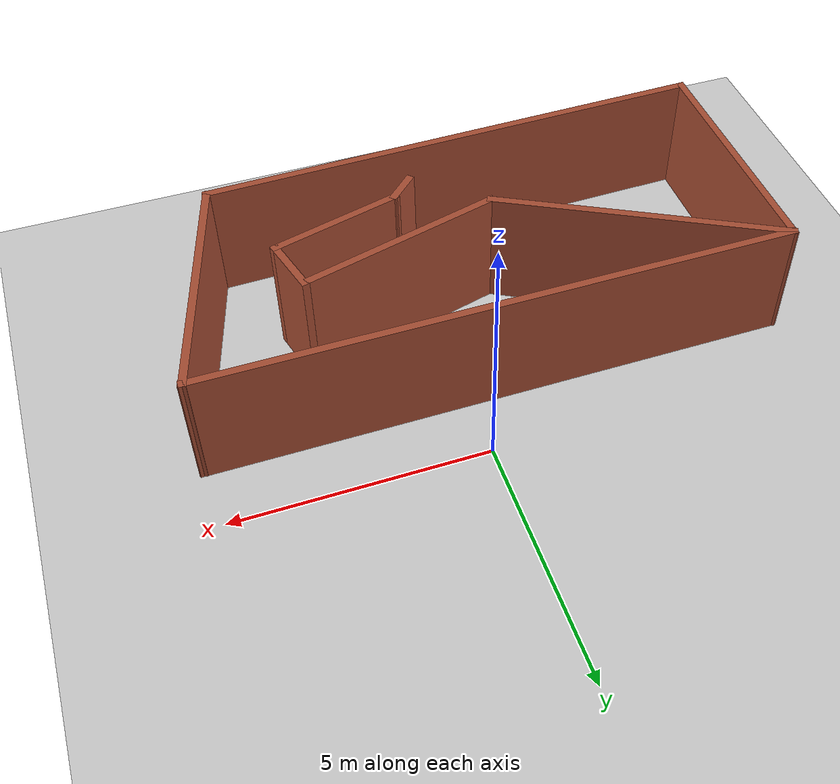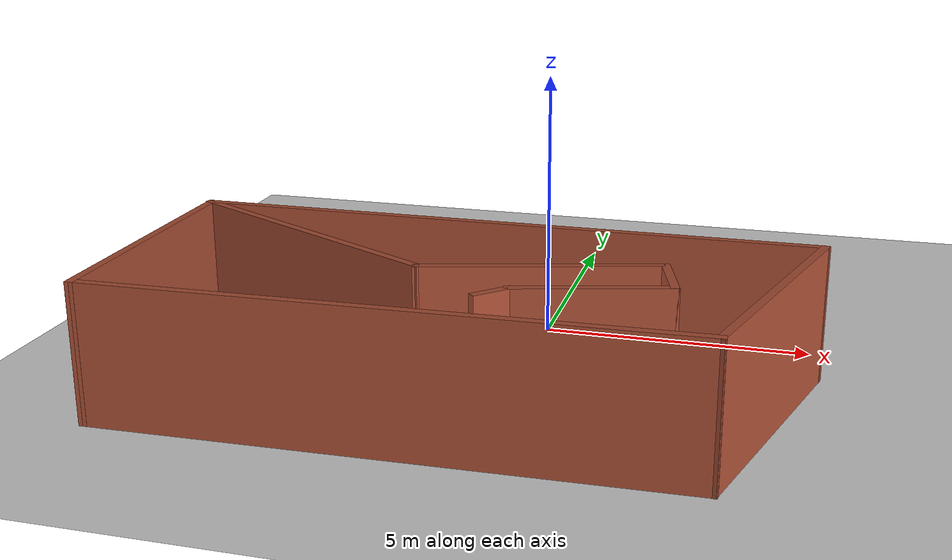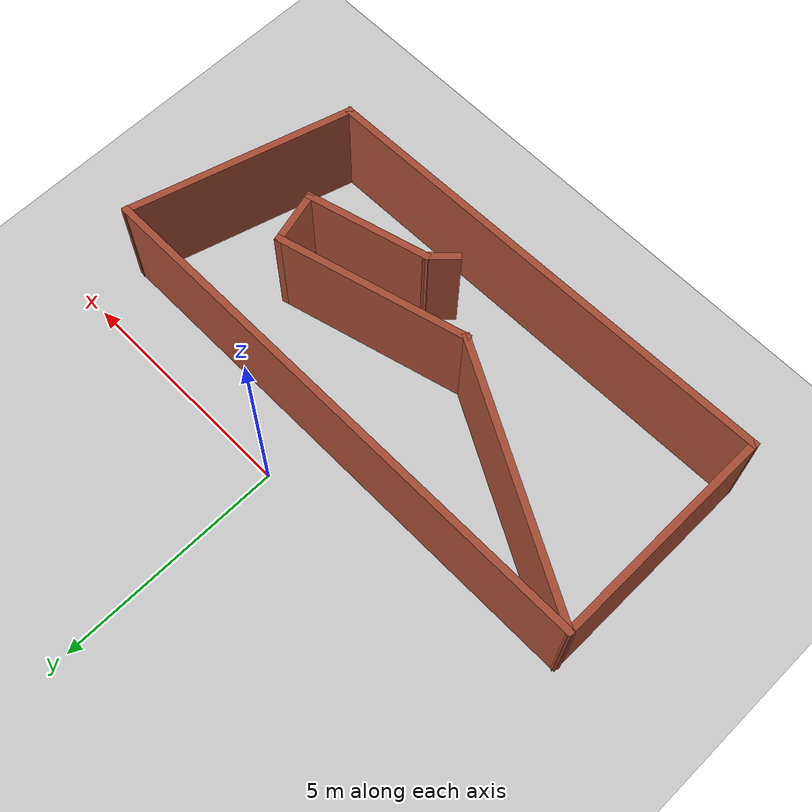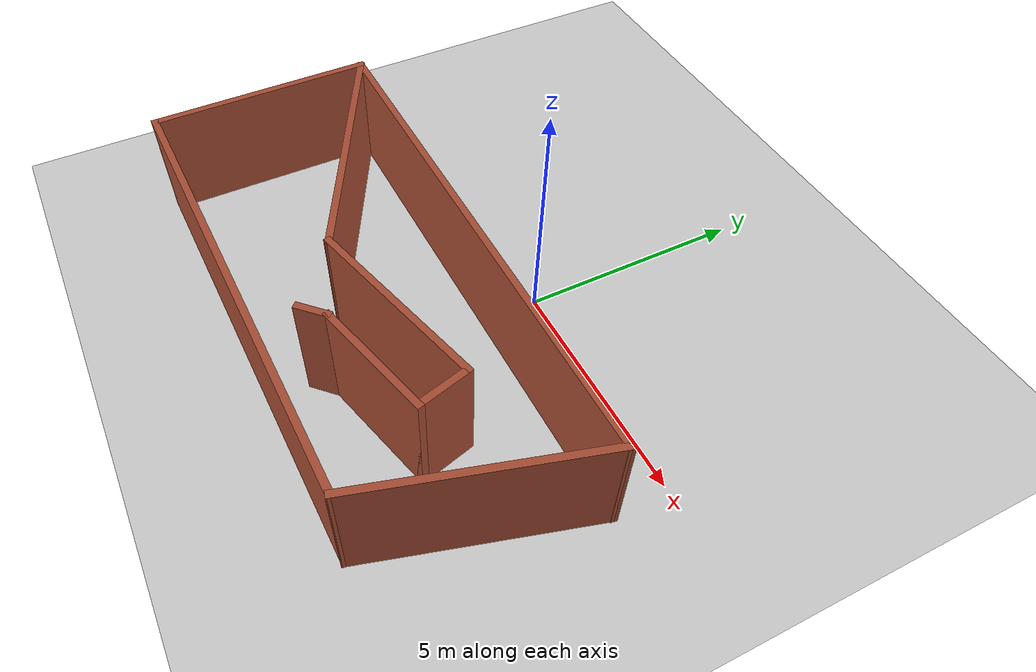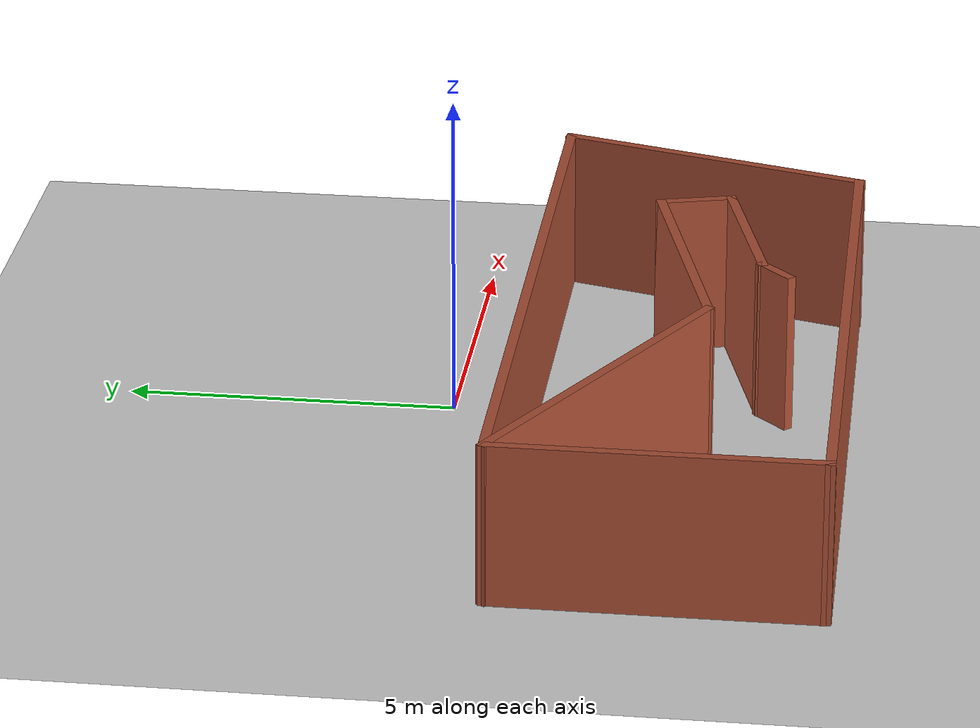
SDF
<sdf version="1.7">
 <world name="default">
  <light name="sun" type="directional">
   <pose>0 0 10 0 -0 0</pose>
   <diffuse>0.8 0.8 0.8 1</diffuse>
   <specular>0.2 0.2 0.2 1</specular>
   <attenuation>
    <range>1000</range>
    <constant>0.9</constant>
    <linear>0.01</linear>
    <quadratic>0.001</quadratic>
   </attenuation>
   <direction>-0.5 0.1 -0.9</direction>
   <spot><inner_angle>0</inner_angle><outer_angle>0</outer_angle><falloff>0</falloff></spot>
  </light>
  <model name="ground_plane">
   <static>1</static>
   <link name="link">
    <collision name="collision">
     <geometry><plane><normal>0 0 1</normal><size>100 100</size></plane></geometry>
     <surface><friction><ode><mu>100</mu><mu2>50</mu2></ode></friction></surface>
    </collision>
    <visual name="visual">
     <cast_shadows>0</cast_shadows>
     <geometry><plane><normal>0 0 1</normal><size>100 100</size></plane></geometry>
     <material>
      <script><uri>file://media/materials/scripts/gazebo.material</uri><name>Gazebo/Grey</name></script>
     </material>
    </visual>
   </link>
  </model>
  <gravity>0 0 -9.8</gravity>
  <magnetic_field>6e-06 2.3e-05 -4.2e-05</magnetic_field>
  <atmosphere type="adiabatic"/>
  <physics type="ode">
   <max_step_size>0.001</max_step_size>
   <real_time_factor>1</real_time_factor>
   <real_time_update_rate>1000</real_time_update_rate>
  </physics>
  <scene><ambient>0.4 0.4 0.4 1</ambient><background>0.7 0.7 0.7 1</background><shadows>1</shadows></scene>
  <audio><device>default</device></audio>
  <spherical_coordinates>
   <surface_model>EARTH_WGS84</surface_model>
   <latitude_deg>0</latitude_deg>
   <longitude_deg>0</longitude_deg>
   <elevation>0</elevation>
   <heading_deg>0</heading_deg>
  </spherical_coordinates>
  <model name="Untitled">
   <pose>-0.643488 -3.0933 0 0 -0 0</pose>
   <link name="Wall_0">
    <collision name="Wall_0_Collision">
     <geometry><box><size>5 0.15 2.5</size></box></geometry>
     <pose>0 0 1.25 0 -0 0</pose>
    </collision>
    <visual name="Wall_0_Visual">
     <pose>0 0 1.25 0 -0 0</pose>
     <geometry><box><size>5 0.15 2.5</size></box></geometry>
     <material>
      <script><uri>file://media/materials/scripts/gazebo.material</uri><name>Gazebo/Bricks</name></script>
      <ambient>1 1 1 1</ambient>
     </material>
     <meta><layer>0</layer></meta>
    </visual>
    <pose>-5.76651 -0.591701 0 0 -0 -1.5708</pose>
   </link>
   <link name="Wall_1">
    <collision name="Wall_1_Collision">
     <geometry><box><size>10.3624 0.15 2.5</size></box></geometry>
     <pose>0 0 1.25 0 -0 0</pose>
    </collision>
    <visual name="Wall_1_Visual">
     <pose>0 0 1.25 0 -0 0</pose>
     <geometry><box><size>10.3624 0.15 2.5</size></box></geometry>
     <material>
      <script><uri>file://media/materials/scripts/gazebo.material</uri><name>Gazebo/Bricks</name></script>
      <ambient>1 1 1 1</ambient>
     </material>
     <meta><layer>0</layer></meta>
    </visual>
    <pose>-0.661512 -2.9067 0 0 -0 0.021544</pose>
   </link>
   <link name="Wall_2">
    <collision name="Wall_2_Collision">
     <geometry><box><size>5 0.15 2.5</size></box></geometry>
     <pose>0 0 1.25 0 -0 0</pose>
    </collision>
    <visual name="Wall_2_Visual">
     <pose>0 0 1.25 0 -0 0</pose>
     <geometry><box><size>5 0.15 2.5</size></box></geometry>
     <material>
      <script><uri>file://media/materials/scripts/gazebo.material</uri><name>Gazebo/Bricks</name></script>
      <ambient>1 1 1 1</ambient>
     </material>
     <meta><layer>0</layer></meta>
    </visual>
    <pose>5.10939 -0.464921 0 0 -0 1.29262</pose>
   </link>
   <link name="Wall_3">
    <collision name="Wall_3_Collision">
     <geometry><box><size>11.6919 0.15 2.5</size></box></geometry>
     <pose>0 0 1.25 0 -0 0</pose>
    </collision>
    <visual name="Wall_3_Visual">
     <pose>0 0 1.25 0 -0 0</pose>
     <geometry><box><size>11.6919 0.15 2.5</size></box></geometry>
     <material>
      <script><uri>file://media/materials/scripts/gazebo.material</uri><name>Gazebo/Bricks</name></script>
      <ambient>1 1 1 1</ambient>
     </material>
     <meta><layer>0</layer></meta>
    </visual>
    <pose>0.004394 1.85008 0 0 -0 -3.13869</pose>
   </link>
   <link name="Wall_4">
    <collision name="Wall_4_Collision">
     <geometry><box><size>5.88785 0.15 2.5</size></box></geometry>
     <pose>0 0 1.25 0 -0 0</pose>
    </collision>
    <visual name="Wall_4_Visual">
     <pose>0 0 1.25 0 -0 0</pose>
     <geometry><box><size>5.88785 0.15 2.5</size></box></geometry>
     <material>
      <script><uri>file://media/materials/scripts/gazebo.material</uri><name>Gazebo/Bricks</name></script>
      <ambient>1 1 1 1</ambient>
     </material>
     <meta><layer>0</layer></meta>
    </visual>
    <pose>-3.2364 0.480799 0 0 -0 -0.490913</pose>
   </link>
   <link name="Wall_5">
    <collision name="Wall_5_Collision">
     <geometry><box><size>4.25 0.15 2.5</size></box></geometry>
     <pose>0 0 1.25 0 -0 0</pose>
    </collision>
    <visual name="Wall_5_Visual">
     <pose>0 0 1.25 0 -0 0</pose>
     <geometry><box><size>4.25 0.15 2.5</size></box></geometry>
     <material>
      <script><uri>file://media/materials/scripts/gazebo.material</uri><name>Gazebo/Bricks</name></script>
      <ambient>1 1 1 1</ambient>
     </material>
     <meta><layer>0</layer></meta>
    </visual>
    <pose>1.27386 -0.341122 0 0 -0 0.261799</pose>
   </link>
   <link name="Wall_6">
    <collision name="Wall_6_Collision">
     <geometry><box><size>1.25 0.15 2.5</size></box></geometry>
     <pose>0 0 1.25 0 -0 0</pose>
    </collision>
    <visual name="Wall_6_Visual">
     <pose>0 0 1.25 0 -0 0</pose>
     <geometry><box><size>1.25 0.15 2.5</size></box></geometry>
     <material>
      <script><uri>file://media/materials/scripts/gazebo.material</uri><name>Gazebo/Bricks</name></script>
      <ambient>1 1 1 1</ambient>
     </material>
     <meta><layer>0</layer></meta>
    </visual>
    <pose>3.39636 -0.341802 0 0 -0 -1.309</pose>
   </link>
   <link name="Wall_7">
    <collision name="Wall_7_Collision">
     <geometry><box><size>2.75 0.15 2.5</size></box></geometry>
     <pose>0 0 1.25 0 -0 0</pose>
    </collision>
    <visual name="Wall_7_Visual">
     <pose>0 0 1.25 0 -0 0</pose>
     <geometry><box><size>2.75 0.15 2.5</size></box></geometry>
     <material>
      <script><uri>file://media/materials/scripts/gazebo.material</uri><name>Gazebo/Bricks</name></script>
      <ambient>1 1 1 1</ambient>
     </material>
     <meta><layer>0</layer></meta>
    </visual>
    <pose>2.28301 -1.20953 0 0 -0 -2.87979</pose>
   </link>
   <link name="Wall_8">
    <collision name="Wall_8_Collision">
     <geometry><box><size>0.75 0.15 2.5</size></box></geometry>
     <pose>0 0 1.25 0 -0 0</pose>
    </collision>
    <visual name="Wall_8_Visual">
     <pose>0 0 1.25 0 -0 0</pose>
     <geometry><box><size>0.75 0.15 2.5</size></box></geometry>
     <material>
      <script><uri>file://media/materials/scripts/gazebo.material</uri><name>Gazebo/Bricks</name></script>
      <ambient>1 1 1 1</ambient>
     </material>
     <meta><layer>0</layer></meta>
    </visual>
    <pose>0.815169 -1.75812 0 0 -0 -2.35619</pose>
   </link>
   <static>1</static>
  </model>
 </world>
</sdf>
